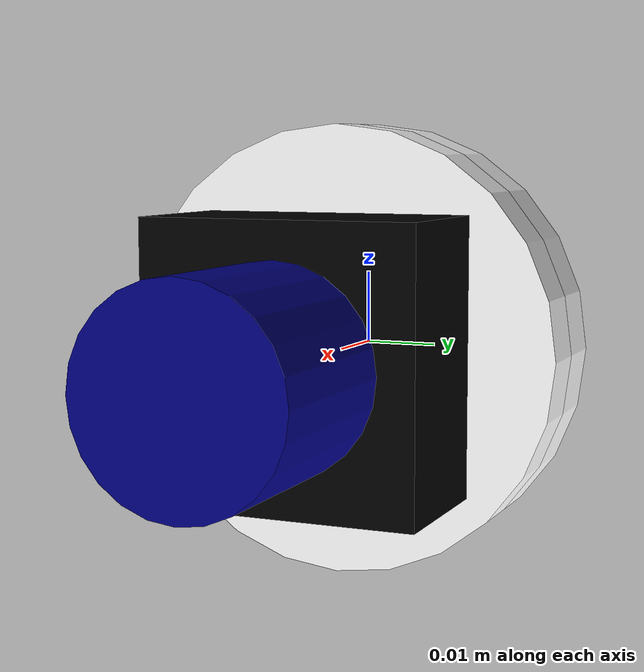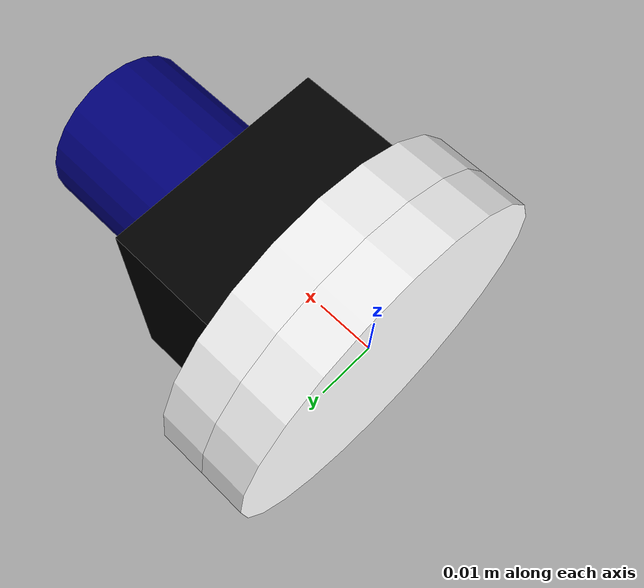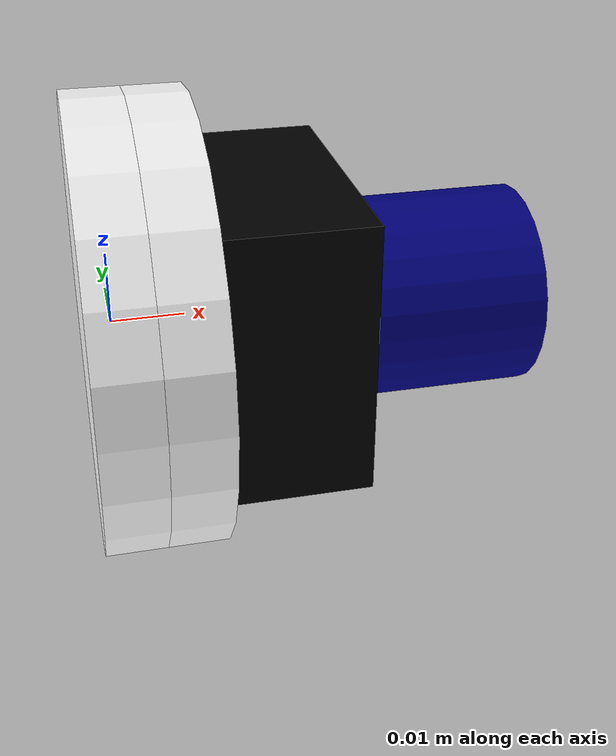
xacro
<?xml version="1.0" encoding="UTF-8"?>
<robot name="actuator" xmlns:xacro="http://ros.org/wiki/xacro">

    <xacro:property name="half_pi" value="1.57079632679" />

    <link name="base_plexi_link">
        <visual>
            <origin xyz="0 0 0" rpy="0 -${half_pi} 0"/>
            <geometry>
                <cylinder length="0.008" radius="0.031"/>
            </geometry>
            <material name="white">
                <color rgba="1 1 1 1"/>
            </material>
        </visual>
        <collision>
            <origin xyz="0 0 0" rpy="0 -${half_pi} 0"/>
            <geometry>
                <cylinder length="0.008" radius="0.031"/>
            </geometry>
        </collision>
    </link>
    <link name="base_plexi_2_link">
        <visual>
            <origin xyz="0 0 0" rpy="0 -${half_pi} 0"/>
            <geometry>
                <cylinder length="0.008" radius="0.031"/>
            </geometry>
            <material name="white">
                <color rgba="1 1 1 1"/>
            </material>
        </visual>
        <collision>
            <origin xyz="0 0 0" rpy="0 -${half_pi} 0"/>
            <geometry>
                <cylinder length="0.008" radius="0.031"/>
            </geometry>
        </collision>
    </link>
    <link name="venturi_link">
        <visual>
            <origin xyz="0 0 0" rpy="0 -${half_pi} 0"/>
            <geometry>
                <box size="0.038 0.038 .020"/>
            </geometry>
            <material name="black">
                <color rgba="0 0 0 1"/>
            </material>
        </visual>
        <collision>
            <origin xyz="0 0 0" rpy="0 -${half_pi} 0"/>
            <geometry>
                <box size="0.038 0.038 .020"/>
            </geometry>
        </collision>
    </link>
    <link name="suction_pad_link">
        <visual>
            <origin xyz="0 0 0" rpy="0 -${half_pi} 0"/>
            <geometry>
                <cylinder length="0.025" radius="0.014"/>
            </geometry>
            <material name="blue">
                <color rgba="0 0 .5 1"/>
            </material>
        </visual>
        <collision>
            <origin xyz="0 0 0" rpy="0 -${half_pi} 0"/>
            <geometry>
                <cylinder length="0.025" radius="0.014"/>
            </geometry>
        </collision>
    </link>
    <joint name="base_plexi_joint" type="fixed">
        <parent link="base_plexi_link"/>
        <child link="base_plexi_2_link"/>
        <origin xyz="0.008 0 0 "/>
    </joint>
    <joint name="base_plexi_2_joint" type="fixed">
        <parent link="base_plexi_2_link"/>
        <child link="venturi_link"/>
        <origin xyz="0.014 0 0 "/>
    </joint>
    <joint name="venturi_joint" type="fixed">
        <parent link="venturi_link"/>
        <child link="suction_pad_link"/>
        <origin xyz="0.0225 0.0 0.0 "/>
    </joint>
</robot>
